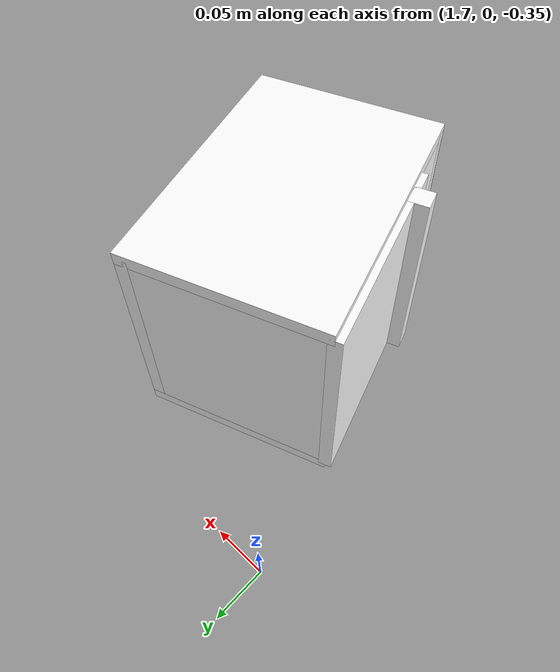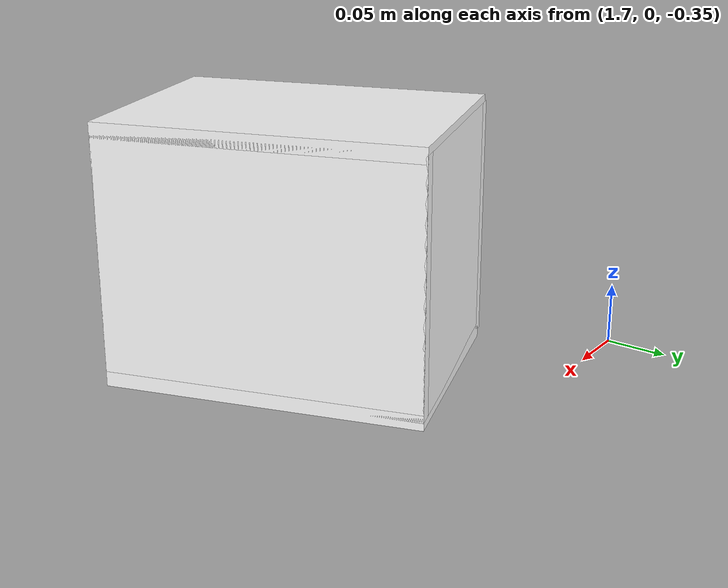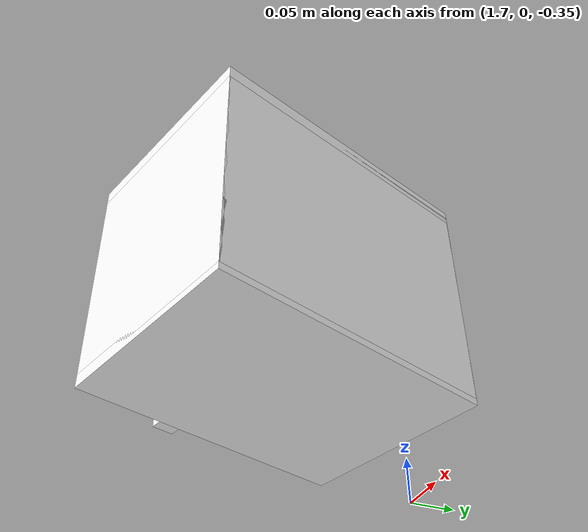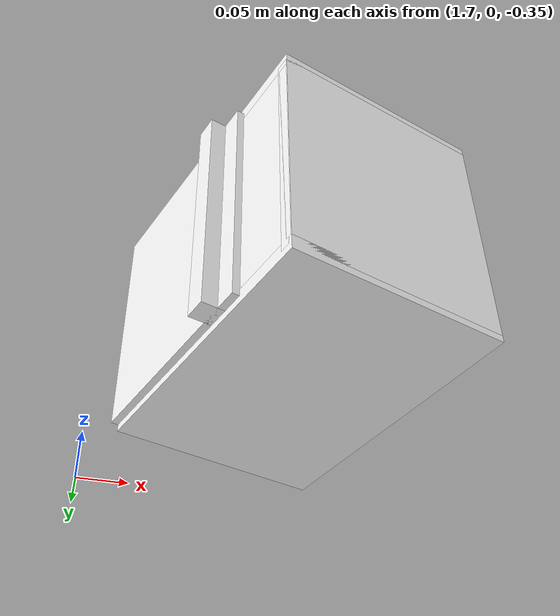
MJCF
<mujoco model="cabinet">
    <compiler angle="radian" eulerseq='zxy' />
    <option gravity = "0 0 0" />
    <option>
        <flag contact = "disable"/>
    </option>
    <statistic	extent="1.0" center="0.0 0.0 0.0"/>
    <visual>
        <map fogstart="3" fogend="5" force="0.1" znear=" 0.100000 " zfar=" 12.000000 "/>
    </visual>
    <size njmax="500" nconmax="100" />
    <actuator>
        <velocity joint="bottom_left_hinge" name="viva_revolution" kv='10'></velocity>
    </actuator>
    <asset>
        <texture builtin="flat" name="tabletex" height="32" width="32" rgb1="1 1 1" type="cube"></texture>
        <texture builtin="flat" name="objtex" height="32" width="32" rgb1="1 1 1" type="cube"></texture>
        <texture builtin="flat" name="handletex" height="32" width="32" rgb1="1 1 1" type="cube"></texture>
        <texture builtin="flat" name="wallpaper" height="32" width="32" rgb1="1 0 0" type="cube"></texture>
        <texture builtin="flat" name="kp" height="32" width="32" rgb1="1 1 1" type="cube"></texture>
        <material name="geomTable" shininess="0.03" specular="0.75" texture="tabletex"></material>
        <material name="geomObj" shininess="0.03" specular="0.75" texture="objtex"></material>
        <material name="geomHandle" shininess="0.03" specular="0.75" texture="handletex"></material>
        <material name="ax" shininess="0.03" specular="0.75" texture="wallpaper"></material>
        <material name="bg" shininess="0.03" specular="0.75" texture="wallpaper"></material>
        <material name="geomKeypad" shininess="0.03" specular="0.75" texture="kp"></material>
    </asset>
    <worldbody>
        <body name="cabinet_bottom" pos= " 1.858704 -0.208340 -0.357934 "  quat= " -0.160681 0.000000 0.000000 0.987006" >
            <inertial pos="0 0 0" mass="1" diaginertia="1 1 1" />
            <geom size= " 0.094442 0.132181 0.006328 "  type="box" material="geomObj" name="b"/>
            <body name="cabinet_left" pos= " 0.000000 -0.125853 0.102819 " >
                <inertial pos="0 0 0" mass="1" diaginertia="1 1 1" />
                <geom size= " 0.094442 0.006328 0.102819 "  type="box" material="geomObj" name="c" />
            </body>
            <body name="cabinet_right" pos= " 0.000000 0.125853 0.102819 " >
                <inertial pos="0 0 0" mass="1" diaginertia="1 1 1" />
                <geom size= " 0.094442 0.006328 0.102819 "  type="box" material="geomObj" name="d" />
            </body>
            <body name="cabinet_top" pos= " 0.000000 0.000000 0.205637 " >
                <inertial pos="0 0 0" mass="1" diaginertia="1 1 1" />
                <geom size= " 0.094442 0.132181 0.006328 "  type="box" material="geomObj" name="e"/>
            </body>
            <body name="cabinet_back" pos= " -0.088114 0.000000 0.102819 "  >
                <inertial pos="0 0 0" mass="1" diaginertia="1 1 1" />
                <geom size= " 0.006328 0.132181 0.102819 "  type="box" material="geomObj" name="f" />
            </body>
            <body name="cabinet_keypad" pos= " 0.006328 0.098136 0.102819 " >
                <inertial pos="0 0 0" mass="1" diaginertia="1 1 1" />
                <geom size= " 0.088114 0.033045 0.096490 "  type="box" material="geomKeypad" name="keypizzlemynizzle" />
            </body>
            <body name="cabinet_left_hinge" pos= " 0.094442 -0.132181 0.102819 " >
                <inertial pos= " 0.000000 0.099136 0.000000 "  mass="1" diaginertia="1 1 1" />
                <joint name="bottom_left_hinge" type="hinge" pos="0 0 0" axis="0 0 1" limited="true" range= "-2.3 0"  />
                <geom size= " 0.006328 0.099136 0.102819 "  pos= " 0.000000 0.099136 0.000000 "  type="box" material="geomObj" name="g"/>
                <body name="handle_link" pos= " 0.010000 0.168271 0.000000 " >
                    <inertial pos="0 0 0" mass="1" diaginertia="1 1 1" />
                    <geom size= " 0.010000 0.010000 0.102819 "  type="box" material="geomHandle" name="h"/>
                </body>
            </body>
        </body>
        <body name="external_camera_body_0" pos="0.0 0 0.00" >
            <camera euler="-1.57 1.57 0.0" fovy=" 54.280851 " name="external_camera_0" pos="0.0 0 0"></camera>
            <inertial pos= " 0.00 0.0 0.000000 " mass="1" diaginertia="1 1 1" />
            <joint name="cam_j" pos="0.0 0 0" axis = "1 0 0" type="free" />
        </body>
    </worldbody>
</mujoco>
